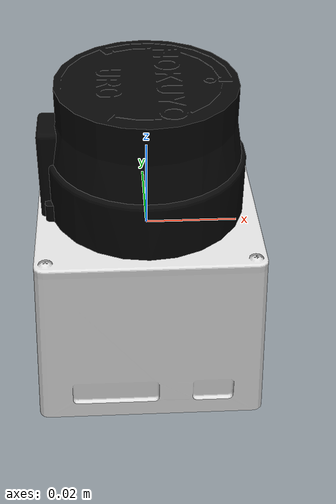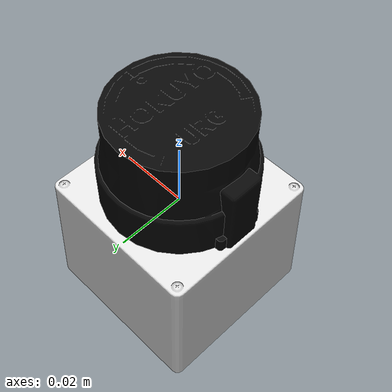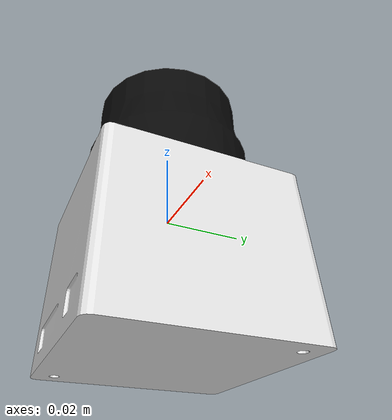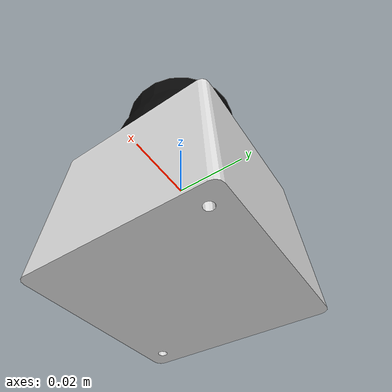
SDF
<?xml version="1.0" ?>
<sdf version="1.4">
  <model name="hokuyo">
    <link name="link">
      <inertial>
        <pose>0.01 0.025 0.025 0 -0 0</pose>
        <mass>0.1</mass>
        <inertia>
          <ixx>4.15e-6</ixx>
          <ixy>0</ixy>
          <ixz>0</ixz>
          <iyy>2.407e-6</iyy>
          <iyz>0</iyz>
          <izz>2.407e-6</izz>
        </inertia>
      </inertial>

      <visual name="visual">
        <geometry>
          <mesh>
            <uri>model://hokuyo/meshes/hokuyo.dae</uri>
          </mesh>
        </geometry>
      </visual>
      <collision name="collision-base">
        <pose>0 0 -0.0145 0 0 0</pose>
        <geometry>
          <box>
            <size>0.01 0.01 0.01</size>
          </box>
        </geometry>
      </collision>
      <collision name="collision-top">
        <pose>0 0 0.0205 0 0 0</pose>
        <geometry>
          <cylinder>
            <radius>0.021</radius>
            <length>0.029</length>
          </cylinder>
        </geometry>
      </collision>
      <sensor name="laser" type="ray">
        <pose>0.01 0 0.0175 0 -0 0</pose>
        <ray>
          <scan>
            <horizontal>
              <samples>640</samples>
              <resolution>1</resolution>
              <min_angle>-2.26889</min_angle>
              <max_angle>2.268899</max_angle>
            </horizontal>
          </scan>
          <range>
            <min>0.08</min>
            <max>100</max>
            <resolution>0.01</resolution>
          </range>
        </ray>
        <plugin name="laser" filename="libRayPlugin.so" />
        <always_on>1</always_on>
        <update_rate>30</update_rate>
        <visualize>false</visualize>
      </sensor>
    </link>
  </model>
</sdf>
